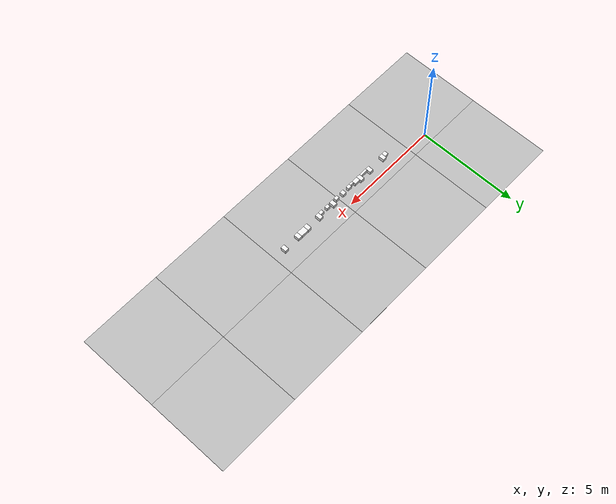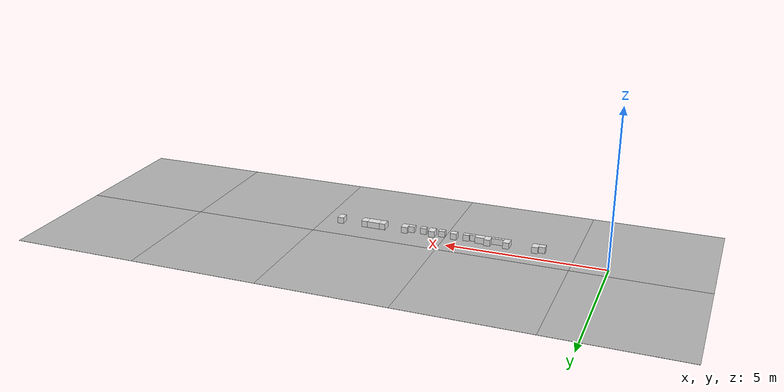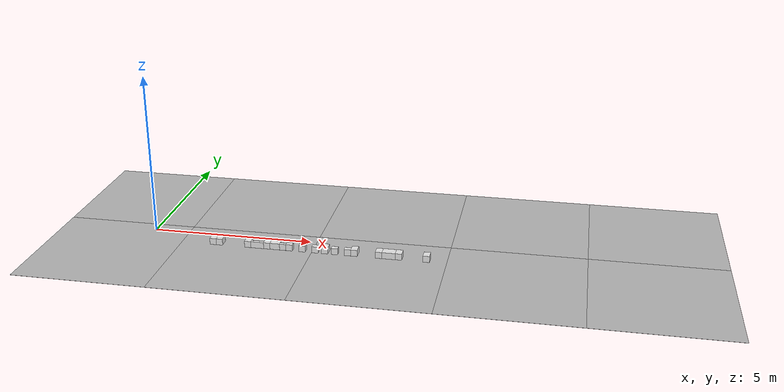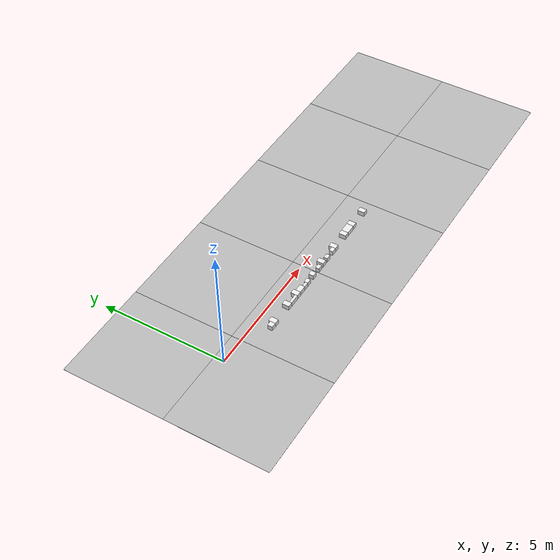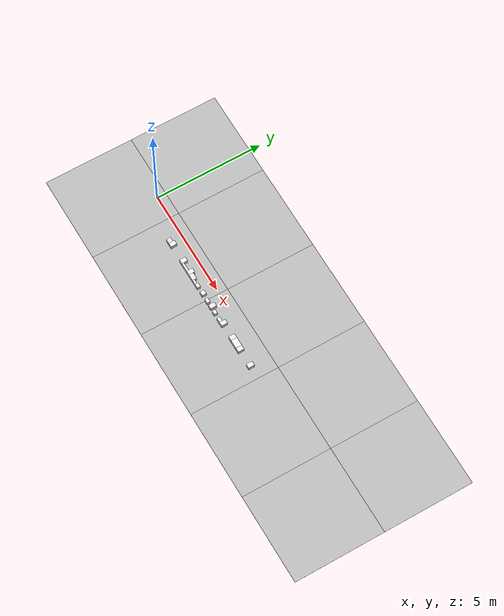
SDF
<sdf version='1.6'><world name='default'>
    <light name='sun_light' type='directional'>
      <pose frame=''>0 0 10 0 -0 0</pose>
      <diffuse>0.5 0.5 0.5 1</diffuse>
      <specular>0.1 0.1 0.1 1</specular>
      <direction>0.1 0.1 -0.9</direction>
      <attenuation>
        <range>20</range>
        <constant>0.5</constant>
        <linear>0.01</linear>
        <quadratic>0.001</quadratic>
      </attenuation>
      <cast_shadows>1</cast_shadows>
    </light>

    <model name='Tile/0-0'>
      <static>1</static>
      <link name='link'>
        <collision name='collision'>
          <geometry>
            <plane>
              <normal>0 0 1</normal>
              <size>4.096 4.096</size>
            </plane>
          </geometry>
          <surface>
            <friction>
              <ode>
                <mu>100</mu>
                <mu2>50</mu2>
              </ode>
              <torsional>
                <ode/>
              </torsional>
            </friction>
            <contact>
              <ode/>
            </contact>
            <bounce/>
          </surface>
          <max_contacts>10</max_contacts>
        </collision>
        <visual name='visual'>
          <cast_shadows>0</cast_shadows>
          <geometry>
            <plane>
              <normal>0 0 1</normal>
              <size>4.096 4.096</size>
            </plane>
          </geometry>
          <material>
            <script>
              <uri>file://materials/scripts</uri>
              <uri>file://materials/textures</uri>
              <name>Tile/aa44efc093d15b0d016b671cb8dad8b9b5925cd42bc6b331ef31decf4ba6863e</name>
            </script>
          </material>
        </visual>
        <self_collide>0</self_collide>
        <enable_wind>0</enable_wind>
        <kinematic>0</kinematic>
      </link>
      <pose frame=''>-0.952 -1.6520000000000001 0 0 -0 0</pose>
    </model>

    <model name='Tile/0-1'>
      <static>1</static>
      <link name='link'>
        <collision name='collision'>
          <geometry>
            <plane>
              <normal>0 0 1</normal>
              <size>4.096 4.096</size>
            </plane>
          </geometry>
          <surface>
            <friction>
              <ode>
                <mu>100</mu>
                <mu2>50</mu2>
              </ode>
              <torsional>
                <ode/>
              </torsional>
            </friction>
            <contact>
              <ode/>
            </contact>
            <bounce/>
          </surface>
          <max_contacts>10</max_contacts>
        </collision>
        <visual name='visual'>
          <cast_shadows>0</cast_shadows>
          <geometry>
            <plane>
              <normal>0 0 1</normal>
              <size>4.096 4.096</size>
            </plane>
          </geometry>
          <material>
            <script>
              <uri>file://materials/scripts</uri>
              <uri>file://materials/textures</uri>
              <name>Tile/6681b896b1587d54cb69aadeb5fb7247b4d6d500490292053e67105ac88ca889</name>
            </script>
          </material>
        </visual>
        <self_collide>0</self_collide>
        <enable_wind>0</enable_wind>
        <kinematic>0</kinematic>
      </link>
      <pose frame=''>-0.952 2.444 0 0 -0 0</pose>
    </model>

    <model name='Tile/1-0'>
      <static>1</static>
      <link name='link'>
        <collision name='collision'>
          <geometry>
            <plane>
              <normal>0 0 1</normal>
              <size>4.096 4.096</size>
            </plane>
          </geometry>
          <surface>
            <friction>
              <ode>
                <mu>100</mu>
                <mu2>50</mu2>
              </ode>
              <torsional>
                <ode/>
              </torsional>
            </friction>
            <contact>
              <ode/>
            </contact>
            <bounce/>
          </surface>
          <max_contacts>10</max_contacts>
        </collision>
        <visual name='visual'>
          <cast_shadows>0</cast_shadows>
          <geometry>
            <plane>
              <normal>0 0 1</normal>
              <size>4.096 4.096</size>
            </plane>
          </geometry>
          <material>
            <script>
              <uri>file://materials/scripts</uri>
              <uri>file://materials/textures</uri>
              <name>Tile/3ed124544dd6a6a039eff2ab946b70685e0989406a3f2571485e6abbf17835fc</name>
            </script>
          </material>
        </visual>
        <self_collide>0</self_collide>
        <enable_wind>0</enable_wind>
        <kinematic>0</kinematic>
      </link>
      <pose frame=''>3.144 -1.6520000000000001 0 0 -0 0</pose>
    </model>

    <model name='Tile/1-1'>
      <static>1</static>
      <link name='link'>
        <collision name='collision'>
          <geometry>
            <plane>
              <normal>0 0 1</normal>
              <size>4.096 4.096</size>
            </plane>
          </geometry>
          <surface>
            <friction>
              <ode>
                <mu>100</mu>
                <mu2>50</mu2>
              </ode>
              <torsional>
                <ode/>
              </torsional>
            </friction>
            <contact>
              <ode/>
            </contact>
            <bounce/>
          </surface>
          <max_contacts>10</max_contacts>
        </collision>
        <visual name='visual'>
          <cast_shadows>0</cast_shadows>
          <geometry>
            <plane>
              <normal>0 0 1</normal>
              <size>4.096 4.096</size>
            </plane>
          </geometry>
          <material>
            <script>
              <uri>file://materials/scripts</uri>
              <uri>file://materials/textures</uri>
              <name>Tile/13957a6de1f2afce18d7f1f64dacc2f21295e26ccf498256b0e1a51002cd5706</name>
            </script>
          </material>
        </visual>
        <self_collide>0</self_collide>
        <enable_wind>0</enable_wind>
        <kinematic>0</kinematic>
      </link>
      <pose frame=''>3.144 2.444 0 0 -0 0</pose>
    </model>

    <model name='Tile/2-0'>
      <static>1</static>
      <link name='link'>
        <collision name='collision'>
          <geometry>
            <plane>
              <normal>0 0 1</normal>
              <size>4.096 4.096</size>
            </plane>
          </geometry>
          <surface>
            <friction>
              <ode>
                <mu>100</mu>
                <mu2>50</mu2>
              </ode>
              <torsional>
                <ode/>
              </torsional>
            </friction>
            <contact>
              <ode/>
            </contact>
            <bounce/>
          </surface>
          <max_contacts>10</max_contacts>
        </collision>
        <visual name='visual'>
          <cast_shadows>0</cast_shadows>
          <geometry>
            <plane>
              <normal>0 0 1</normal>
              <size>4.096 4.096</size>
            </plane>
          </geometry>
          <material>
            <script>
              <uri>file://materials/scripts</uri>
              <uri>file://materials/textures</uri>
              <name>Tile/21fa3fdf97f63ac45004330f6415d3054bdccd68232ff6fb20b99989acfcee63</name>
            </script>
          </material>
        </visual>
        <self_collide>0</self_collide>
        <enable_wind>0</enable_wind>
        <kinematic>0</kinematic>
      </link>
      <pose frame=''>7.24 -1.6520000000000001 0 0 -0 0</pose>
    </model>

    <model name='Tile/2-1'>
      <static>1</static>
      <link name='link'>
        <collision name='collision'>
          <geometry>
            <plane>
              <normal>0 0 1</normal>
              <size>4.096 4.096</size>
            </plane>
          </geometry>
          <surface>
            <friction>
              <ode>
                <mu>100</mu>
                <mu2>50</mu2>
              </ode>
              <torsional>
                <ode/>
              </torsional>
            </friction>
            <contact>
              <ode/>
            </contact>
            <bounce/>
          </surface>
          <max_contacts>10</max_contacts>
        </collision>
        <visual name='visual'>
          <cast_shadows>0</cast_shadows>
          <geometry>
            <plane>
              <normal>0 0 1</normal>
              <size>4.096 4.096</size>
            </plane>
          </geometry>
          <material>
            <script>
              <uri>file://materials/scripts</uri>
              <uri>file://materials/textures</uri>
              <name>Tile/13957a6de1f2afce18d7f1f64dacc2f21295e26ccf498256b0e1a51002cd5706</name>
            </script>
          </material>
        </visual>
        <self_collide>0</self_collide>
        <enable_wind>0</enable_wind>
        <kinematic>0</kinematic>
      </link>
      <pose frame=''>7.24 2.444 0 0 -0 0</pose>
    </model>

    <model name='Tile/3-0'>
      <static>1</static>
      <link name='link'>
        <collision name='collision'>
          <geometry>
            <plane>
              <normal>0 0 1</normal>
              <size>4.096 4.096</size>
            </plane>
          </geometry>
          <surface>
            <friction>
              <ode>
                <mu>100</mu>
                <mu2>50</mu2>
              </ode>
              <torsional>
                <ode/>
              </torsional>
            </friction>
            <contact>
              <ode/>
            </contact>
            <bounce/>
          </surface>
          <max_contacts>10</max_contacts>
        </collision>
        <visual name='visual'>
          <cast_shadows>0</cast_shadows>
          <geometry>
            <plane>
              <normal>0 0 1</normal>
              <size>4.096 4.096</size>
            </plane>
          </geometry>
          <material>
            <script>
              <uri>file://materials/scripts</uri>
              <uri>file://materials/textures</uri>
              <name>Tile/abe61641e72e42510ec0c33382329821aa0ffdabd8bdd301795f6aacd2568930</name>
            </script>
          </material>
        </visual>
        <self_collide>0</self_collide>
        <enable_wind>0</enable_wind>
        <kinematic>0</kinematic>
      </link>
      <pose frame=''>11.336 -1.6520000000000001 0 0 -0 0</pose>
    </model>

    <model name='Tile/3-1'>
      <static>1</static>
      <link name='link'>
        <collision name='collision'>
          <geometry>
            <plane>
              <normal>0 0 1</normal>
              <size>4.096 4.096</size>
            </plane>
          </geometry>
          <surface>
            <friction>
              <ode>
                <mu>100</mu>
                <mu2>50</mu2>
              </ode>
              <torsional>
                <ode/>
              </torsional>
            </friction>
            <contact>
              <ode/>
            </contact>
            <bounce/>
          </surface>
          <max_contacts>10</max_contacts>
        </collision>
        <visual name='visual'>
          <cast_shadows>0</cast_shadows>
          <geometry>
            <plane>
              <normal>0 0 1</normal>
              <size>4.096 4.096</size>
            </plane>
          </geometry>
          <material>
            <script>
              <uri>file://materials/scripts</uri>
              <uri>file://materials/textures</uri>
              <name>Tile/9a638098c074a6a28d2b802bd76e24a7c94687fec106f022fc197313878202a5</name>
            </script>
          </material>
        </visual>
        <self_collide>0</self_collide>
        <enable_wind>0</enable_wind>
        <kinematic>0</kinematic>
      </link>
      <pose frame=''>11.336 2.444 0 0 -0 0</pose>
    </model>

    <model name='Tile/4-0'>
      <static>1</static>
      <link name='link'>
        <collision name='collision'>
          <geometry>
            <plane>
              <normal>0 0 1</normal>
              <size>4.096 4.096</size>
            </plane>
          </geometry>
          <surface>
            <friction>
              <ode>
                <mu>100</mu>
                <mu2>50</mu2>
              </ode>
              <torsional>
                <ode/>
              </torsional>
            </friction>
            <contact>
              <ode/>
            </contact>
            <bounce/>
          </surface>
          <max_contacts>10</max_contacts>
        </collision>
        <visual name='visual'>
          <cast_shadows>0</cast_shadows>
          <geometry>
            <plane>
              <normal>0 0 1</normal>
              <size>4.096 4.096</size>
            </plane>
          </geometry>
          <material>
            <script>
              <uri>file://materials/scripts</uri>
              <uri>file://materials/textures</uri>
              <name>Tile/5eab350b8220ac9944dbdfa4ac3288c7c17e24c3bf5df0dfcf6173d64dae00a1</name>
            </script>
          </material>
        </visual>
        <self_collide>0</self_collide>
        <enable_wind>0</enable_wind>
        <kinematic>0</kinematic>
      </link>
      <pose frame=''>15.431999999999999 -1.6520000000000001 0 0 -0 0</pose>
    </model>

    <model name='Tile/4-1'>
      <static>1</static>
      <link name='link'>
        <collision name='collision'>
          <geometry>
            <plane>
              <normal>0 0 1</normal>
              <size>4.096 4.096</size>
            </plane>
          </geometry>
          <surface>
            <friction>
              <ode>
                <mu>100</mu>
                <mu2>50</mu2>
              </ode>
              <torsional>
                <ode/>
              </torsional>
            </friction>
            <contact>
              <ode/>
            </contact>
            <bounce/>
          </surface>
          <max_contacts>10</max_contacts>
        </collision>
        <visual name='visual'>
          <cast_shadows>0</cast_shadows>
          <geometry>
            <plane>
              <normal>0 0 1</normal>
              <size>4.096 4.096</size>
            </plane>
          </geometry>
          <material>
            <script>
              <uri>file://materials/scripts</uri>
              <uri>file://materials/textures</uri>
              <name>Tile/5eab350b8220ac9944dbdfa4ac3288c7c17e24c3bf5df0dfcf6173d64dae00a1</name>
            </script>
          </material>
        </visual>
        <self_collide>0</self_collide>
        <enable_wind>0</enable_wind>
        <kinematic>0</kinematic>
      </link>
      <pose frame=''>15.431999999999999 2.444 0 0 -0 0</pose>
    </model>

    <model name='Obstacle/-5/0'>
      <pose frame=''>2.1 -0.6 0.1 0 0 -0.0</pose>
      <link name='link'>
        <inertial>
          <mass>10</mass>
          <inertia>
            <ixx>0.166667</ixx>
            <ixy>0</ixy>
            <ixz>0</ixz>
            <iyy>0.166667</iyy>
            <iyz>0</iyz>
            <izz>0.166667</izz>
          </inertia>
        </inertial>
        <collision name='collision'>
          <geometry>
            <box>
              <size>0.2 0.2 0.2</size>
            </box>
          </geometry>
          <max_contacts>10</max_contacts>
          <surface>
            <contact>
              <ode/>
            </contact>
            <bounce/>
            <friction>
              <torsional>
                <ode/>
              </torsional>
              <ode/>
            </friction>
          </surface>
        </collision>
        <visual name='visual'>
          <geometry>
            <box>
              <size>0.2 0.2 0.2</size>
            </box>
          </geometry>
          <material>
            <script>
              <name>Gazebo/White</name>
              <uri>file://media/materials/scripts/gazebo.material</uri>
            </script>
          </material>
        </visual>
        <self_collide>0</self_collide>
        <enable_wind>0</enable_wind>
        <kinematic>0</kinematic>
      </link>
    </model>

    <model name='Obstacle/-9/0'>
      <pose frame=''>2.3000000000000003 -0.5599999999999999 0.1 0 0 -0.0</pose>
      <link name='link'>
        <inertial>
          <mass>10</mass>
          <inertia>
            <ixx>0.166667</ixx>
            <ixy>0</ixy>
            <ixz>0</ixz>
            <iyy>0.166667</iyy>
            <iyz>0</iyz>
            <izz>0.166667</izz>
          </inertia>
        </inertial>
        <collision name='collision'>
          <geometry>
            <box>
              <size>0.2 0.28 0.2</size>
            </box>
          </geometry>
          <max_contacts>10</max_contacts>
          <surface>
            <contact>
              <ode/>
            </contact>
            <bounce/>
            <friction>
              <torsional>
                <ode/>
              </torsional>
              <ode/>
            </friction>
          </surface>
        </collision>
        <visual name='visual'>
          <geometry>
            <box>
              <size>0.2 0.28 0.2</size>
            </box>
          </geometry>
          <material>
            <script>
              <name>Gazebo/White</name>
              <uri>file://media/materials/scripts/gazebo.material</uri>
            </script>
          </material>
        </visual>
        <self_collide>0</self_collide>
        <enable_wind>0</enable_wind>
        <kinematic>0</kinematic>
      </link>
    </model>

    <model name='Obstacle/-16/0'>
      <pose frame=''>3.2000000000000006 -0.5599999999999999 0.1 0 0 -0.0</pose>
      <link name='link'>
        <inertial>
          <mass>10</mass>
          <inertia>
            <ixx>0.166667</ixx>
            <ixy>0</ixy>
            <ixz>0</ixz>
            <iyy>0.166667</iyy>
            <iyz>0</iyz>
            <izz>0.166667</izz>
          </inertia>
        </inertial>
        <collision name='collision'>
          <geometry>
            <box>
              <size>0.2 0.28 0.2</size>
            </box>
          </geometry>
          <max_contacts>10</max_contacts>
          <surface>
            <contact>
              <ode/>
            </contact>
            <bounce/>
            <friction>
              <torsional>
                <ode/>
              </torsional>
              <ode/>
            </friction>
          </surface>
        </collision>
        <visual name='visual'>
          <geometry>
            <box>
              <size>0.2 0.28 0.2</size>
            </box>
          </geometry>
          <material>
            <script>
              <name>Gazebo/White</name>
              <uri>file://media/materials/scripts/gazebo.material</uri>
            </script>
          </material>
        </visual>
        <self_collide>0</self_collide>
        <enable_wind>0</enable_wind>
        <kinematic>0</kinematic>
      </link>
    </model>

    <model name='Obstacle/-20/0'>
      <pose frame=''>3.500000000000001 -0.6499999999999999 0.1 0 0 -0.0</pose>
      <link name='link'>
        <inertial>
          <mass>10</mass>
          <inertia>
            <ixx>0.166667</ixx>
            <ixy>0</ixy>
            <ixz>0</ixz>
            <iyy>0.166667</iyy>
            <iyz>0</iyz>
            <izz>0.166667</izz>
          </inertia>
        </inertial>
        <collision name='collision'>
          <geometry>
            <box>
              <size>0.4 0.1 0.2</size>
            </box>
          </geometry>
          <max_contacts>10</max_contacts>
          <surface>
            <contact>
              <ode/>
            </contact>
            <bounce/>
            <friction>
              <torsional>
                <ode/>
              </torsional>
              <ode/>
            </friction>
          </surface>
        </collision>
        <visual name='visual'>
          <geometry>
            <box>
              <size>0.4 0.1 0.2</size>
            </box>
          </geometry>
          <material>
            <script>
              <name>Gazebo/White</name>
              <uri>file://media/materials/scripts/gazebo.material</uri>
            </script>
          </material>
        </visual>
        <self_collide>0</self_collide>
        <enable_wind>0</enable_wind>
        <kinematic>0</kinematic>
      </link>
    </model>

    <model name='Obstacle/-24/0'>
      <pose frame=''>3.8000000000000007 -0.5599999999999999 0.1 0 0 -0.0</pose>
      <link name='link'>
        <inertial>
          <mass>10</mass>
          <inertia>
            <ixx>0.166667</ixx>
            <ixy>0</ixy>
            <ixz>0</ixz>
            <iyy>0.166667</iyy>
            <iyz>0</iyz>
            <izz>0.166667</izz>
          </inertia>
        </inertial>
        <collision name='collision'>
          <geometry>
            <box>
              <size>0.2 0.28 0.2</size>
            </box>
          </geometry>
          <max_contacts>10</max_contacts>
          <surface>
            <contact>
              <ode/>
            </contact>
            <bounce/>
            <friction>
              <torsional>
                <ode/>
              </torsional>
              <ode/>
            </friction>
          </surface>
        </collision>
        <visual name='visual'>
          <geometry>
            <box>
              <size>0.2 0.28 0.2</size>
            </box>
          </geometry>
          <material>
            <script>
              <name>Gazebo/White</name>
              <uri>file://media/materials/scripts/gazebo.material</uri>
            </script>
          </material>
        </visual>
        <self_collide>0</self_collide>
        <enable_wind>0</enable_wind>
        <kinematic>0</kinematic>
      </link>
    </model>

    <model name='Obstacle/-28/0'>
      <pose frame=''>4.050000000000001 -0.6 0.1 0 0 -0.0</pose>
      <link name='link'>
        <inertial>
          <mass>10</mass>
          <inertia>
            <ixx>0.166667</ixx>
            <ixy>0</ixy>
            <ixz>0</ixz>
            <iyy>0.166667</iyy>
            <iyz>0</iyz>
            <izz>0.166667</izz>
          </inertia>
        </inertial>
        <collision name='collision'>
          <geometry>
            <box>
              <size>0.3 0.2 0.2</size>
            </box>
          </geometry>
          <max_contacts>10</max_contacts>
          <surface>
            <contact>
              <ode/>
            </contact>
            <bounce/>
            <friction>
              <torsional>
                <ode/>
              </torsional>
              <ode/>
            </friction>
          </surface>
        </collision>
        <visual name='visual'>
          <geometry>
            <box>
              <size>0.3 0.2 0.2</size>
            </box>
          </geometry>
          <material>
            <script>
              <name>Gazebo/White</name>
              <uri>file://media/materials/scripts/gazebo.material</uri>
            </script>
          </material>
        </visual>
        <self_collide>0</self_collide>
        <enable_wind>0</enable_wind>
        <kinematic>0</kinematic>
      </link>
    </model>

    <model name='Obstacle/-32/0'>
      <pose frame=''>4.300000000000001 -0.6499999999999999 0.1 0 0 -0.0</pose>
      <link name='link'>
        <inertial>
          <mass>10</mass>
          <inertia>
            <ixx>0.166667</ixx>
            <ixy>0</ixy>
            <ixz>0</ixz>
            <iyy>0.166667</iyy>
            <iyz>0</iyz>
            <izz>0.166667</izz>
          </inertia>
        </inertial>
        <collision name='collision'>
          <geometry>
            <box>
              <size>0.2 0.1 0.2</size>
            </box>
          </geometry>
          <max_contacts>10</max_contacts>
          <surface>
            <contact>
              <ode/>
            </contact>
            <bounce/>
            <friction>
              <torsional>
                <ode/>
              </torsional>
              <ode/>
            </friction>
          </surface>
        </collision>
        <visual name='visual'>
          <geometry>
            <box>
              <size>0.2 0.1 0.2</size>
            </box>
          </geometry>
          <material>
            <script>
              <name>Gazebo/White</name>
              <uri>file://media/materials/scripts/gazebo.material</uri>
            </script>
          </material>
        </visual>
        <self_collide>0</self_collide>
        <enable_wind>0</enable_wind>
        <kinematic>0</kinematic>
      </link>
    </model>

    <model name='Obstacle/-36/0'>
      <pose frame=''>4.500000000000001 -0.625 0.1 0 0 -0.0</pose>
      <link name='link'>
        <inertial>
          <mass>10</mass>
          <inertia>
            <ixx>0.166667</ixx>
            <ixy>0</ixy>
            <ixz>0</ixz>
            <iyy>0.166667</iyy>
            <iyz>0</iyz>
            <izz>0.166667</izz>
          </inertia>
        </inertial>
        <collision name='collision'>
          <geometry>
            <box>
              <size>0.2 0.15 0.2</size>
            </box>
          </geometry>
          <max_contacts>10</max_contacts>
          <surface>
            <contact>
              <ode/>
            </contact>
            <bounce/>
            <friction>
              <torsional>
                <ode/>
              </torsional>
              <ode/>
            </friction>
          </surface>
        </collision>
        <visual name='visual'>
          <geometry>
            <box>
              <size>0.2 0.15 0.2</size>
            </box>
          </geometry>
          <material>
            <script>
              <name>Gazebo/White</name>
              <uri>file://media/materials/scripts/gazebo.material</uri>
            </script>
          </material>
        </visual>
        <self_collide>0</self_collide>
        <enable_wind>0</enable_wind>
        <kinematic>0</kinematic>
      </link>
    </model>

    <model name='Obstacle/-43/0'>
      <pose frame=''>4.900000000000001 -0.6 0.1 0 0 -0.0</pose>
      <link name='link'>
        <inertial>
          <mass>10</mass>
          <inertia>
            <ixx>0.166667</ixx>
            <ixy>0</ixy>
            <ixz>0</ixz>
            <iyy>0.166667</iyy>
            <iyz>0</iyz>
            <izz>0.166667</izz>
          </inertia>
        </inertial>
        <collision name='collision'>
          <geometry>
            <box>
              <size>0.2 0.2 0.2</size>
            </box>
          </geometry>
          <max_contacts>10</max_contacts>
          <surface>
            <contact>
              <ode/>
            </contact>
            <bounce/>
            <friction>
              <torsional>
                <ode/>
              </torsional>
              <ode/>
            </friction>
          </surface>
        </collision>
        <visual name='visual'>
          <geometry>
            <box>
              <size>0.2 0.2 0.2</size>
            </box>
          </geometry>
          <material>
            <script>
              <name>Gazebo/White</name>
              <uri>file://media/materials/scripts/gazebo.material</uri>
            </script>
          </material>
        </visual>
        <self_collide>0</self_collide>
        <enable_wind>0</enable_wind>
        <kinematic>0</kinematic>
      </link>
    </model>

    <model name='Obstacle/-50/0'>
      <pose frame=''>5.300000000000002 -0.625 0.1 0 0 -0.0</pose>
      <link name='link'>
        <inertial>
          <mass>10</mass>
          <inertia>
            <ixx>0.166667</ixx>
            <ixy>0</ixy>
            <ixz>0</ixz>
            <iyy>0.166667</iyy>
            <iyz>0</iyz>
            <izz>0.166667</izz>
          </inertia>
        </inertial>
        <collision name='collision'>
          <geometry>
            <box>
              <size>0.2 0.15 0.2</size>
            </box>
          </geometry>
          <max_contacts>10</max_contacts>
          <surface>
            <contact>
              <ode/>
            </contact>
            <bounce/>
            <friction>
              <torsional>
                <ode/>
              </torsional>
              <ode/>
            </friction>
          </surface>
        </collision>
        <visual name='visual'>
          <geometry>
            <box>
              <size>0.2 0.15 0.2</size>
            </box>
          </geometry>
          <material>
            <script>
              <name>Gazebo/White</name>
              <uri>file://media/materials/scripts/gazebo.material</uri>
            </script>
          </material>
        </visual>
        <self_collide>0</self_collide>
        <enable_wind>0</enable_wind>
        <kinematic>0</kinematic>
      </link>
    </model>

    <model name='Obstacle/-57/0'>
      <pose frame=''>5.600000000000001 -0.5599999999999999 0.1 0 0 -0.0</pose>
      <link name='link'>
        <inertial>
          <mass>10</mass>
          <inertia>
            <ixx>0.166667</ixx>
            <ixy>0</ixy>
            <ixz>0</ixz>
            <iyy>0.166667</iyy>
            <iyz>0</iyz>
            <izz>0.166667</izz>
          </inertia>
        </inertial>
        <collision name='collision'>
          <geometry>
            <box>
              <size>0.2 0.28 0.2</size>
            </box>
          </geometry>
          <max_contacts>10</max_contacts>
          <surface>
            <contact>
              <ode/>
            </contact>
            <bounce/>
            <friction>
              <torsional>
                <ode/>
              </torsional>
              <ode/>
            </friction>
          </surface>
        </collision>
        <visual name='visual'>
          <geometry>
            <box>
              <size>0.2 0.28 0.2</size>
            </box>
          </geometry>
          <material>
            <script>
              <name>Gazebo/White</name>
              <uri>file://media/materials/scripts/gazebo.material</uri>
            </script>
          </material>
        </visual>
        <self_collide>0</self_collide>
        <enable_wind>0</enable_wind>
        <kinematic>0</kinematic>
      </link>
    </model>

    <model name='Obstacle/-64/0'>
      <pose frame=''>5.900000000000001 -0.625 0.1 0 0 -0.0</pose>
      <link name='link'>
        <inertial>
          <mass>10</mass>
          <inertia>
            <ixx>0.166667</ixx>
            <ixy>0</ixy>
            <ixz>0</ixz>
            <iyy>0.166667</iyy>
            <iyz>0</iyz>
            <izz>0.166667</izz>
          </inertia>
        </inertial>
        <collision name='collision'>
          <geometry>
            <box>
              <size>0.2 0.15 0.2</size>
            </box>
          </geometry>
          <max_contacts>10</max_contacts>
          <surface>
            <contact>
              <ode/>
            </contact>
            <bounce/>
            <friction>
              <torsional>
                <ode/>
              </torsional>
              <ode/>
            </friction>
          </surface>
        </collision>
        <visual name='visual'>
          <geometry>
            <box>
              <size>0.2 0.15 0.2</size>
            </box>
          </geometry>
          <material>
            <script>
              <name>Gazebo/White</name>
              <uri>file://media/materials/scripts/gazebo.material</uri>
            </script>
          </material>
        </visual>
        <self_collide>0</self_collide>
        <enable_wind>0</enable_wind>
        <kinematic>0</kinematic>
      </link>
    </model>

    <model name='Obstacle/-71/0'>
      <pose frame=''>6.300000000000002 -0.625 0.1 0 0 -0.0</pose>
      <link name='link'>
        <inertial>
          <mass>10</mass>
          <inertia>
            <ixx>0.166667</ixx>
            <ixy>0</ixy>
            <ixz>0</ixz>
            <iyy>0.166667</iyy>
            <iyz>0</iyz>
            <izz>0.166667</izz>
          </inertia>
        </inertial>
        <collision name='collision'>
          <geometry>
            <box>
              <size>0.2 0.15 0.2</size>
            </box>
          </geometry>
          <max_contacts>10</max_contacts>
          <surface>
            <contact>
              <ode/>
            </contact>
            <bounce/>
            <friction>
              <torsional>
                <ode/>
              </torsional>
              <ode/>
            </friction>
          </surface>
        </collision>
        <visual name='visual'>
          <geometry>
            <box>
              <size>0.2 0.15 0.2</size>
            </box>
          </geometry>
          <material>
            <script>
              <name>Gazebo/White</name>
              <uri>file://media/materials/scripts/gazebo.material</uri>
            </script>
          </material>
        </visual>
        <self_collide>0</self_collide>
        <enable_wind>0</enable_wind>
        <kinematic>0</kinematic>
      </link>
    </model>

    <model name='Obstacle/-75/0'>
      <pose frame=''>6.500000000000002 -0.5599999999999999 0.1 0 0 -0.0</pose>
      <link name='link'>
        <inertial>
          <mass>10</mass>
          <inertia>
            <ixx>0.166667</ixx>
            <ixy>0</ixy>
            <ixz>0</ixz>
            <iyy>0.166667</iyy>
            <iyz>0</iyz>
            <izz>0.166667</izz>
          </inertia>
        </inertial>
        <collision name='collision'>
          <geometry>
            <box>
              <size>0.2 0.28 0.2</size>
            </box>
          </geometry>
          <max_contacts>10</max_contacts>
          <surface>
            <contact>
              <ode/>
            </contact>
            <bounce/>
            <friction>
              <torsional>
                <ode/>
              </torsional>
              <ode/>
            </friction>
          </surface>
        </collision>
        <visual name='visual'>
          <geometry>
            <box>
              <size>0.2 0.28 0.2</size>
            </box>
          </geometry>
          <material>
            <script>
              <name>Gazebo/White</name>
              <uri>file://media/materials/scripts/gazebo.material</uri>
            </script>
          </material>
        </visual>
        <self_collide>0</self_collide>
        <enable_wind>0</enable_wind>
        <kinematic>0</kinematic>
      </link>
    </model>

    <model name='Obstacle/-82/0'>
      <pose frame=''>7.250000000000002 -0.5599999999999999 0.1 0 0 -0.0</pose>
      <link name='link'>
        <inertial>
          <mass>10</mass>
          <inertia>
            <ixx>0.166667</ixx>
            <ixy>0</ixy>
            <ixz>0</ixz>
            <iyy>0.166667</iyy>
            <iyz>0</iyz>
            <izz>0.166667</izz>
          </inertia>
        </inertial>
        <collision name='collision'>
          <geometry>
            <box>
              <size>0.2 0.28 0.2</size>
            </box>
          </geometry>
          <max_contacts>10</max_contacts>
          <surface>
            <contact>
              <ode/>
            </contact>
            <bounce/>
            <friction>
              <torsional>
                <ode/>
              </torsional>
              <ode/>
            </friction>
          </surface>
        </collision>
        <visual name='visual'>
          <geometry>
            <box>
              <size>0.2 0.28 0.2</size>
            </box>
          </geometry>
          <material>
            <script>
              <name>Gazebo/White</name>
              <uri>file://media/materials/scripts/gazebo.material</uri>
            </script>
          </material>
        </visual>
        <self_collide>0</self_collide>
        <enable_wind>0</enable_wind>
        <kinematic>0</kinematic>
      </link>
    </model>

    <model name='Obstacle/-86/0'>
      <pose frame=''>7.5500000000000025 -0.5599999999999999 0.1 0 0 -0.0</pose>
      <link name='link'>
        <inertial>
          <mass>10</mass>
          <inertia>
            <ixx>0.166667</ixx>
            <ixy>0</ixy>
            <ixz>0</ixz>
            <iyy>0.166667</iyy>
            <iyz>0</iyz>
            <izz>0.166667</izz>
          </inertia>
        </inertial>
        <collision name='collision'>
          <geometry>
            <box>
              <size>0.4 0.28 0.2</size>
            </box>
          </geometry>
          <max_contacts>10</max_contacts>
          <surface>
            <contact>
              <ode/>
            </contact>
            <bounce/>
            <friction>
              <torsional>
                <ode/>
              </torsional>
              <ode/>
            </friction>
          </surface>
        </collision>
        <visual name='visual'>
          <geometry>
            <box>
              <size>0.4 0.28 0.2</size>
            </box>
          </geometry>
          <material>
            <script>
              <name>Gazebo/White</name>
              <uri>file://media/materials/scripts/gazebo.material</uri>
            </script>
          </material>
        </visual>
        <self_collide>0</self_collide>
        <enable_wind>0</enable_wind>
        <kinematic>0</kinematic>
      </link>
    </model>

    <model name='Obstacle/-90/0'>
      <pose frame=''>7.850000000000002 -0.5599999999999999 0.1 0 0 -0.0</pose>
      <link name='link'>
        <inertial>
          <mass>10</mass>
          <inertia>
            <ixx>0.166667</ixx>
            <ixy>0</ixy>
            <ixz>0</ixz>
            <iyy>0.166667</iyy>
            <iyz>0</iyz>
            <izz>0.166667</izz>
          </inertia>
        </inertial>
        <collision name='collision'>
          <geometry>
            <box>
              <size>0.2 0.28 0.2</size>
            </box>
          </geometry>
          <max_contacts>10</max_contacts>
          <surface>
            <contact>
              <ode/>
            </contact>
            <bounce/>
            <friction>
              <torsional>
                <ode/>
              </torsional>
              <ode/>
            </friction>
          </surface>
        </collision>
        <visual name='visual'>
          <geometry>
            <box>
              <size>0.2 0.28 0.2</size>
            </box>
          </geometry>
          <material>
            <script>
              <name>Gazebo/White</name>
              <uri>file://media/materials/scripts/gazebo.material</uri>
            </script>
          </material>
        </visual>
        <self_collide>0</self_collide>
        <enable_wind>0</enable_wind>
        <kinematic>0</kinematic>
      </link>
    </model>

    <model name='Obstacle/-97/0'>
      <pose frame=''>8.680000000000003 -0.5599999999999999 0.1 0 0 -0.0</pose>
      <link name='link'>
        <inertial>
          <mass>10</mass>
          <inertia>
            <ixx>0.166667</ixx>
            <ixy>0</ixy>
            <ixz>0</ixz>
            <iyy>0.166667</iyy>
            <iyz>0</iyz>
            <izz>0.166667</izz>
          </inertia>
        </inertial>
        <collision name='collision'>
          <geometry>
            <box>
              <size>0.2 0.28 0.2</size>
            </box>
          </geometry>
          <max_contacts>10</max_contacts>
          <surface>
            <contact>
              <ode/>
            </contact>
            <bounce/>
            <friction>
              <torsional>
                <ode/>
              </torsional>
              <ode/>
            </friction>
          </surface>
        </collision>
        <visual name='visual'>
          <geometry>
            <box>
              <size>0.2 0.28 0.2</size>
            </box>
          </geometry>
          <material>
            <script>
              <name>Gazebo/White</name>
              <uri>file://media/materials/scripts/gazebo.material</uri>
            </script>
          </material>
        </visual>
        <self_collide>0</self_collide>
        <enable_wind>0</enable_wind>
        <kinematic>0</kinematic>
      </link>
    </model>
    </world></sdf>
